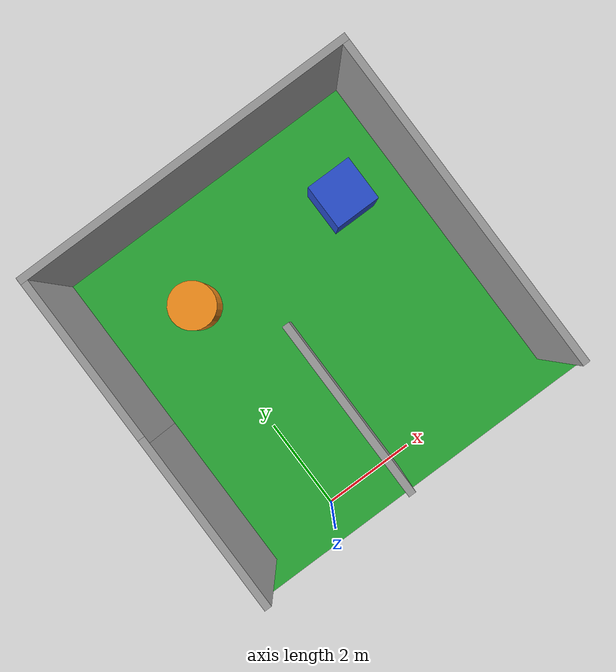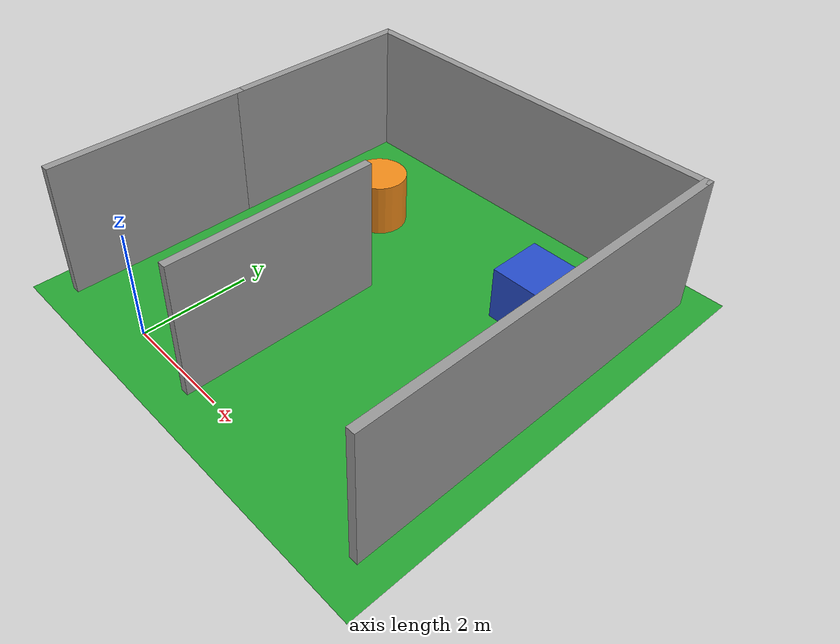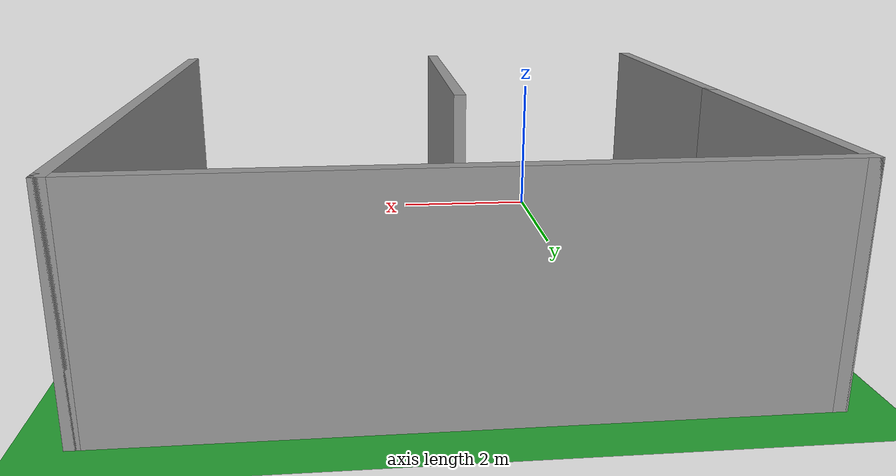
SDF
<sdf version="1.7">
 <world name="default">
  <light name="sun" type="directional">
   <pose>0 0 10 0 -0 0</pose>
   <diffuse>0.8 0.8 0.8 1</diffuse>
   <specular>0.2 0.2 0.2 1</specular>
   <attenuation>
    <range>1000</range>
    <constant>0.9</constant>
    <linear>0.01</linear>
    <quadratic>0.001</quadratic>
   </attenuation>
   <direction>-0.5 0.1 -0.9</direction>
   <spot><inner_angle>0</inner_angle><outer_angle>0</outer_angle><falloff>0</falloff></spot>
  </light>
  <model name="ground_plane">
   <static>1</static>
   <link name="link">
    <collision name="collision">
     <geometry><plane><normal>0 0 1</normal><size>100 100</size></plane></geometry>
     <surface>
      <contact><collide_bitmask>65535</collide_bitmask></contact>
      <friction><ode><mu>100</mu><mu2>50</mu2></ode></friction>
     </surface>
    </collision>
    <visual name="visual">
     <cast_shadows>0</cast_shadows>
     <geometry><plane><normal>0 0 1</normal><size>100 100</size></plane></geometry>
     <material>
      <script><uri>file://media/materials/scripts/gazebo.material</uri><name>Gazebo/Green</name></script>
     </material>
    </visual>
   </link>
  </model>
  <gravity>0 0 -9.8</gravity>
  <magnetic_field>6e-06 2.3e-05 -4.2e-05</magnetic_field>
  <atmosphere type="adiabatic"/>
  <physics type="ode">
   <max_step_size>0.001</max_step_size>
   <real_time_factor>1</real_time_factor>
   <real_time_update_rate>1000</real_time_update_rate>
  </physics>
  <scene><ambient>0.4 0.4 0.4 1</ambient><background>0.7 0.7 0.7 1</background><shadows>1</shadows></scene>
  <spherical_coordinates>
   <surface_model>EARTH_WGS84</surface_model>
   <latitude_deg>0</latitude_deg>
   <longitude_deg>0</longitude_deg>
   <elevation>0</elevation>
   <heading_deg>0</heading_deg>
  </spherical_coordinates>
  <model name="u-wall">
   <pose>1.82651 3.38031 0 0 -0 0</pose>
   <link name="Wall_1">
    <collision name="Wall_1_Collision">
     <geometry><box><size>3.75 0.15 2.5</size></box></geometry>
     <pose>0 0 1.25 0 -0 0</pose>
    </collision>
    <visual name="Wall_1_Visual">
     <pose>0 0 1.25 0 -0 0</pose>
     <geometry><box><size>3.75 0.15 2.5</size></box></geometry>
     <material>
      <script><uri>file://media/materials/scripts/gazebo.material</uri><name>Gazebo/Grey</name></script>
      <ambient>1 1 1 1</ambient>
     </material>
     <meta><layer>0</layer></meta>
    </visual>
    <pose>-3.55 -1.8 0 0 -0 1.5708</pose>
   </link>
   <link name="Wall_10">
    <collision name="Wall_10_Collision">
     <geometry><box><size>7.25 0.15 2.5</size></box></geometry>
     <pose>0 0 1.25 0 -0 0</pose>
    </collision>
    <visual name="Wall_10_Visual">
     <pose>0 0 1.25 0 -0 0</pose>
     <geometry><box><size>7.25 0.15 2.5</size></box></geometry>
     <material>
      <script><uri>file://media/materials/scripts/gazebo.material</uri><name>Gazebo/Grey</name></script>
      <ambient>1 1 1 1</ambient>
     </material>
     <meta><layer>0</layer></meta>
    </visual>
    <pose>0 3.6 0 0 -0 0</pose>
   </link>
   <link name="Wall_12">
    <collision name="Wall_12_Collision">
     <geometry><box><size>7.25 0.15 2.5</size></box></geometry>
     <pose>0 0 1.25 0 -0 0</pose>
    </collision>
    <visual name="Wall_12_Visual">
     <pose>0 0 1.25 0 -0 0</pose>
     <geometry><box><size>7.25 0.15 2.5</size></box></geometry>
     <material>
      <script><uri>file://media/materials/scripts/gazebo.material</uri><name>Gazebo/Grey</name></script>
      <ambient>1 1 1 1</ambient>
     </material>
     <meta><layer>0</layer></meta>
    </visual>
    <pose>3.55 0.05 0 0 -0 -1.5708</pose>
   </link>
   <link name="Wall_5">
    <collision name="Wall_5_Collision">
     <geometry><box><size>3.75 0.15 2.5</size></box></geometry>
     <pose>0 0 1.25 0 -0 0</pose>
    </collision>
    <visual name="Wall_5_Visual">
     <pose>0 0 1.25 0 -0 0</pose>
     <geometry><box><size>3.75 0.15 2.5</size></box></geometry>
     <material>
      <script><uri>file://media/materials/scripts/gazebo.material</uri><name>Gazebo/Grey</name></script>
      <ambient>1 1 1 1</ambient>
     </material>
     <meta><layer>0</layer></meta>
    </visual>
    <pose>-0.3 -1.71 0 0 -0 1.5708</pose>
   </link>
   <link name="Wall_9">
    <collision name="Wall_9_Collision">
     <geometry><box><size>3.75 0.15 2.5</size></box></geometry>
     <pose>0 0 1.25 0 -0 0</pose>
    </collision>
    <visual name="Wall_9_Visual">
     <pose>0 0 1.25 0 -0 0</pose>
     <geometry><box><size>3.75 0.15 2.5</size></box></geometry>
     <material>
      <script><uri>file://media/materials/scripts/gazebo.material</uri><name>Gazebo/Grey</name></script>
      <ambient>1 1 1 1</ambient>
     </material>
     <meta><layer>0</layer></meta>
    </visual>
    <pose>-3.55 1.8 0 0 -0 1.5708</pose>
   </link>
   <static>1</static>
  </model>
  <model name="cyl_orange">
   <link name="link">
    <inertial>
     <mass>1</mass>
     <inertia><ixx>0.145833</ixx><ixy>0</ixy><ixz>0</ixz><iyy>0.145833</iyy><iyz>0</iyz><izz>0.125</izz></inertia>
    </inertial>
    <visual name="visual">
     <geometry><cylinder><radius>0.5</radius><length>1</length></cylinder></geometry>
     <material>
      <script><name>Gazebo/Orange</name><uri>file://media/materials/scripts/gazebo.material</uri></script>
      <shader type="pixel"><normal_map>__default__</normal_map></shader>
      <ambient>1 0.509 0.047 1</ambient>
      <diffuse>1 0.509 0.047 1</diffuse>
      <specular>0.5 0.5 0.5 1</specular>
      <emissive>0 0 0 1</emissive>
     </material>
    </visual>
    <collision name="collision">
     <geometry><cylinder><radius>0.5</radius><length>1</length></cylinder></geometry>
     <surface>
      <friction>
       <ode><mu>1</mu><mu2>1</mu2><fdir1>0 0 0</fdir1><slip1>0</slip1><slip2>0</slip2></ode>
       <torsional>
        <coefficient>1</coefficient>
        <patch_radius>0</patch_radius>
        <surface_radius>0</surface_radius>
        <use_patch_radius>1</use_patch_radius>
        <ode><slip>0</slip></ode>
       </torsional>
      </friction>
      <bounce><restitution_coefficient>0</restitution_coefficient><threshold>1e+06</threshold></bounce>
      <contact>
       <collide_without_contact>0</collide_without_contact>
       <collide_without_contact_bitmask>1</collide_without_contact_bitmask>
       <collide_bitmask>1</collide_bitmask>
       <ode>
        <soft_cfm>0</soft_cfm>
        <soft_erp>0.2</soft_erp>
        <kp>1e+13</kp>
        <kd>1</kd>
        <max_vel>0.01</max_vel>
        <min_depth>0</min_depth>
       </ode>
       <bullet>
        <split_impulse>1</split_impulse>
        <split_impulse_penetration_threshold>-0.01</split_impulse_penetration_threshold>
        <soft_cfm>0</soft_cfm>
        <soft_erp>0.2</soft_erp>
        <kp>1e+13</kp>
        <kd>1</kd>
       </bullet>
      </contact>
     </surface>
    </collision>
   </link>
   <static>0</static>
   <pose>0.237945 4.97086 0.499997 3e-06 4e-06 -0</pose>
  </model>
  <model name="box_blue">
   <link name="link">
    <inertial>
     <mass>1</mass>
     <inertia>
      <ixx>0.166667</ixx>
      <ixy>0</ixy>
      <ixz>0</ixz>
      <iyy>0.166667</iyy>
      <iyz>0</iyz>
      <izz>0.166667</izz>
     </inertia>
    </inertial>
    <visual name="visual">
     <geometry><box><size>1 1 1</size></box></geometry>
     <material>
      <script><name>Gazebo/Blue</name><uri>file://media/materials/scripts/gazebo.material</uri></script>
      <shader type="pixel"><normal_map>__default__</normal_map></shader>
      <ambient>0 0 1 1</ambient>
      <diffuse>0 0 1 1</diffuse>
      <specular>0.1 0.1 0.1 1</specular>
      <emissive>0 0 0 1</emissive>
     </material>
    </visual>
    <collision name="collision">
     <geometry><box><size>1 1 1</size></box></geometry>
     <surface>
      <friction>
       <ode><mu>1</mu><mu2>1</mu2><fdir1>0 0 0</fdir1><slip1>0</slip1><slip2>0</slip2></ode>
       <torsional>
        <coefficient>1</coefficient>
        <patch_radius>0</patch_radius>
        <surface_radius>0</surface_radius>
        <use_patch_radius>1</use_patch_radius>
        <ode><slip>0</slip></ode>
       </torsional>
      </friction>
      <bounce><restitution_coefficient>0</restitution_coefficient><threshold>1e+06</threshold></bounce>
      <contact>
       <collide_without_contact>0</collide_without_contact>
       <collide_without_contact_bitmask>1</collide_without_contact_bitmask>
       <collide_bitmask>1</collide_bitmask>
       <ode>
        <soft_cfm>0</soft_cfm>
        <soft_erp>0.2</soft_erp>
        <kp>1e+13</kp>
        <kd>1</kd>
        <max_vel>0.01</max_vel>
        <min_depth>0</min_depth>
       </ode>
       <bullet>
        <split_impulse>1</split_impulse>
        <split_impulse_penetration_threshold>-0.01</split_impulse_penetration_threshold>
        <soft_cfm>0</soft_cfm>
        <soft_erp>0.2</soft_erp>
        <kp>1e+13</kp>
        <kd>1</kd>
       </bullet>
      </contact>
     </surface>
    </collision>
   </link>
   <static>0</static>
   <pose>3.97298 4.96983 0.5 0 -0 0</pose>
  </model>
 </world>
</sdf>
